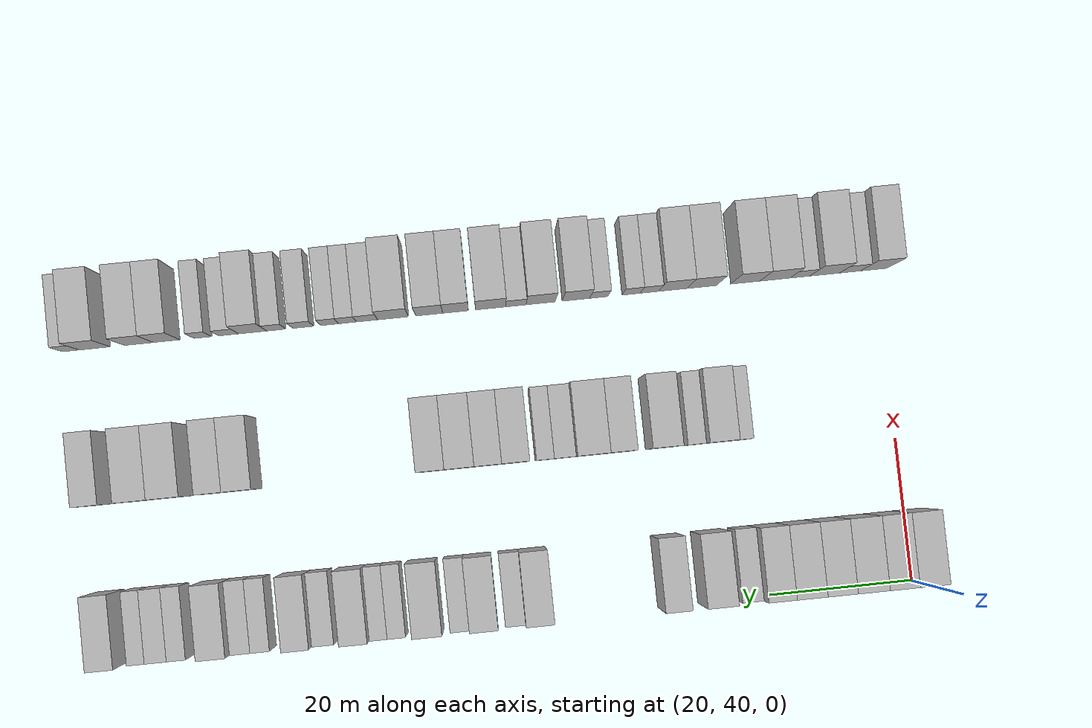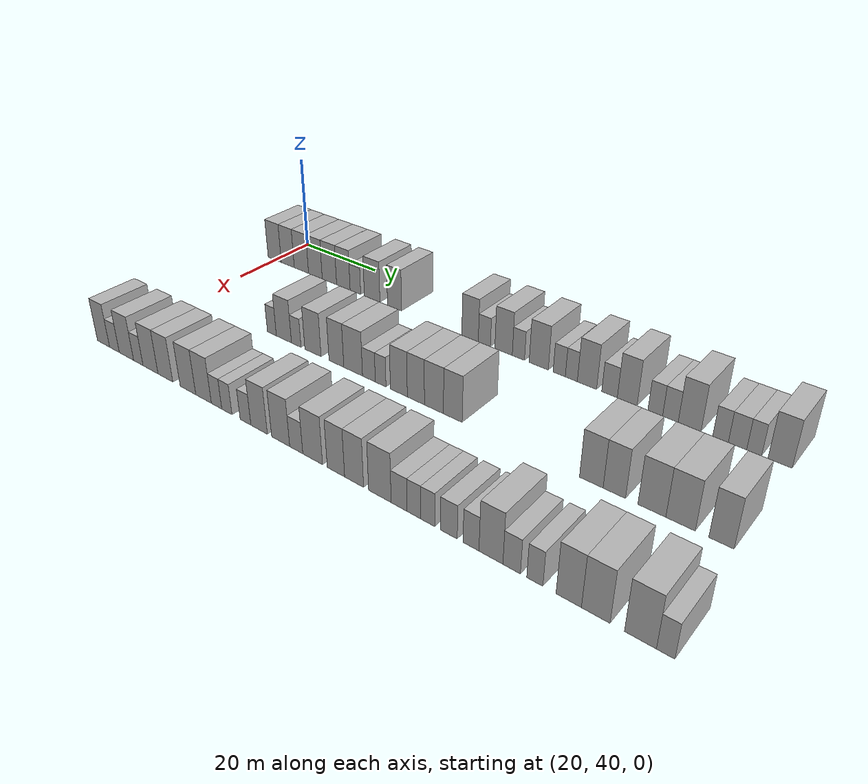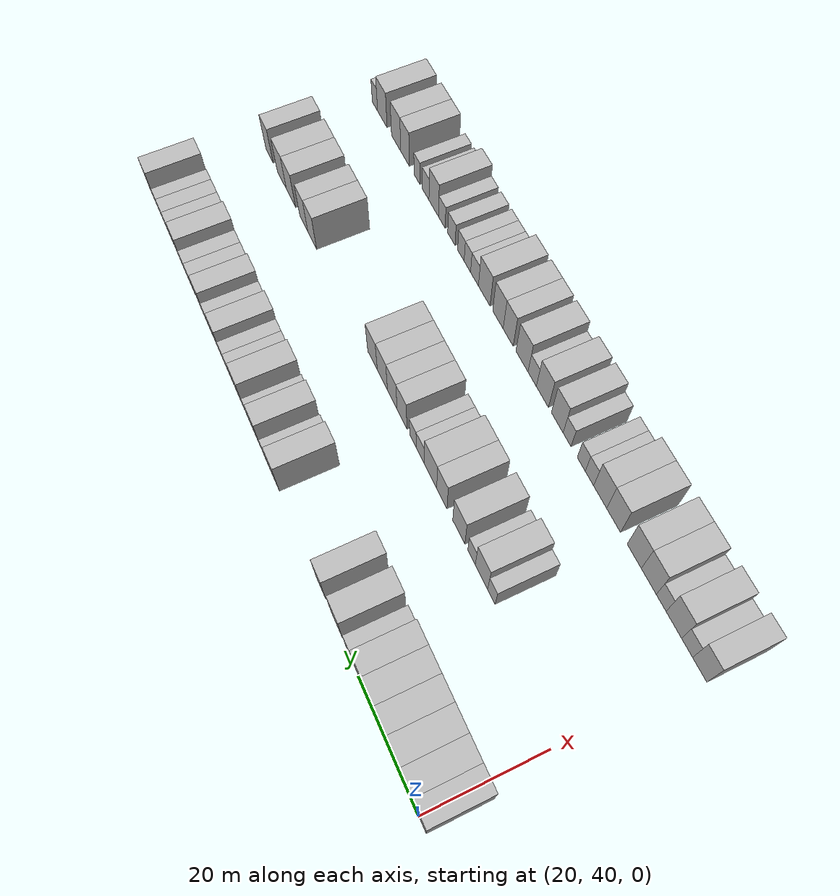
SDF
<sdf version="1.6">
 <world name="default">
  <model name="building_73">
   <static>1</static>
   <pose>25.0000 39.7007 0 0.000000 0.000000 0.000000</pose>
   <link name="link">
    <pose>0 0 4.50 0 0 0</pose>
    <collision name="collision"><geometry><box><size>10.0000 4.1010 9.0000</size></box></geometry></collision>
    <visual name="visual">
     <cast_shadows>0</cast_shadows>
     <geometry><box><size>10.0000 4.1010 9.0000</size></box></geometry>
     <material>
      <script>
       <uri>model://HANNAS_wall/materials/scripts</uri>
       <uri>model://HANNAS_wall/materials/textures</uri>
       <name>vrc/HANNAS_wall</name>
      </script>
     </material>
    </visual>
   </link>
  </model>
  <model name="building_74">
   <static>1</static>
   <pose>25.0000 43.7528 0 0.000000 0.000000 0.000000</pose>
   <link name="link">
    <pose>0 0 4.50 0 0 0</pose>
    <collision name="collision"><geometry><box><size>10.0000 4.0031 9.0000</size></box></geometry></collision>
    <visual name="visual">
     <cast_shadows>0</cast_shadows>
     <geometry><box><size>10.0000 4.0031 9.0000</size></box></geometry>
     <material>
      <script>
       <uri>model://HANNAS_wall/materials/scripts</uri>
       <uri>model://HANNAS_wall/materials/textures</uri>
       <name>vrc/HANNAS_wall</name>
      </script>
     </material>
    </visual>
   </link>
  </model>
  <model name="building_75">
   <static>1</static>
   <pose>25.0000 47.8939 0 0.000000 0.000000 0.000000</pose>
   <link name="link">
    <pose>0 0 4.50 0 0 0</pose>
    <collision name="collision"><geometry><box><size>10.0000 4.2792 9.0000</size></box></geometry></collision>
    <visual name="visual">
     <cast_shadows>0</cast_shadows>
     <geometry><box><size>10.0000 4.2792 9.0000</size></box></geometry>
     <material>
      <script>
       <uri>model://HANNAS_wall/materials/scripts</uri>
       <uri>model://HANNAS_wall/materials/textures</uri>
       <name>vrc/HANNAS_wall</name>
      </script>
     </material>
    </visual>
   </link>
  </model>
  <model name="building_76">
   <static>1</static>
   <pose>25.0000 52.0568 0 0.000000 0.000000 0.000000</pose>
   <link name="link">
    <pose>0 0 4.50 0 0 0</pose>
    <collision name="collision"><geometry><box><size>10.0000 4.0465 9.0000</size></box></geometry></collision>
    <visual name="visual">
     <cast_shadows>0</cast_shadows>
     <geometry><box><size>10.0000 4.0465 9.0000</size></box></geometry>
     <material>
      <script>
       <uri>model://HANNAS_wall/materials/scripts</uri>
       <uri>model://HANNAS_wall/materials/textures</uri>
       <name>vrc/HANNAS_wall</name>
      </script>
     </material>
    </visual>
   </link>
  </model>
  <model name="building_77">
   <static>1</static>
   <pose>25.0000 56.1449 0 0.000000 0.000000 0.000000</pose>
   <link name="link">
    <pose>0 0 4.50 0 0 0</pose>
    <collision name="collision"><geometry><box><size>10.0000 4.1297 9.0000</size></box></geometry></collision>
    <visual name="visual">
     <cast_shadows>0</cast_shadows>
     <geometry><box><size>10.0000 4.1297 9.0000</size></box></geometry>
     <material>
      <script>
       <uri>model://HANNAS_wall/materials/scripts</uri>
       <uri>model://HANNAS_wall/materials/textures</uri>
       <name>vrc/HANNAS_wall</name>
      </script>
     </material>
    </visual>
   </link>
  </model>
  <model name="building_78">
   <static>1</static>
   <pose>25.0000 60.1134 0 0.000000 0.000000 0.000000</pose>
   <link name="link">
    <pose>0 0 4.50 0 0 0</pose>
    <collision name="collision"><geometry><box><size>10.0000 3.8072 9.0000</size></box></geometry></collision>
    <visual name="visual">
     <cast_shadows>0</cast_shadows>
     <geometry><box><size>10.0000 3.8072 9.0000</size></box></geometry>
     <material>
      <script>
       <uri>model://HANNAS_wall/materials/scripts</uri>
       <uri>model://HANNAS_wall/materials/textures</uri>
       <name>vrc/HANNAS_wall</name>
      </script>
     </material>
    </visual>
   </link>
  </model>
  <model name="building_79">
   <static>1</static>
   <pose>25.0000 63.4777 0 0.000000 0.000000 0.000000</pose>
   <link name="link">
    <pose>0 0 3.00 0 0 0</pose>
    <collision name="collision"><geometry><box><size>10.0000 2.9216 6.0000</size></box></geometry></collision>
    <visual name="visual">
     <cast_shadows>0</cast_shadows>
     <geometry><box><size>10.0000 2.9216 6.0000</size></box></geometry>
     <material>
      <script>
       <uri>model://HANNAS_wall/materials/scripts</uri>
       <uri>model://HANNAS_wall/materials/textures</uri>
       <name>vrc/HANNAS_wall</name>
      </script>
     </material>
    </visual>
   </link>
  </model>
  <model name="building_80">
   <static>1</static>
   <pose>25.0000 68.0339 0 0.000000 0.000000 0.000000</pose>
   <link name="link">
    <pose>0 0 4.50 0 0 0</pose>
    <collision name="collision"><geometry><box><size>10.0000 4.1908 9.0000</size></box></geometry></collision>
    <visual name="visual">
     <cast_shadows>0</cast_shadows>
     <geometry><box><size>10.0000 4.1908 9.0000</size></box></geometry>
     <material>
      <script>
       <uri>model://HANNAS_wall/materials/scripts</uri>
       <uri>model://HANNAS_wall/materials/textures</uri>
       <name>vrc/HANNAS_wall</name>
      </script>
     </material>
    </visual>
   </link>
  </model>
  <model name="building_81">
   <static>1</static>
   <pose>25.0000 73.9498 0 0.000000 0.000000 0.000000</pose>
   <link name="link">
    <pose>0 0 4.50 0 0 0</pose>
    <collision name="collision"><geometry><box><size>10.0000 3.6410 9.0000</size></box></geometry></collision>
    <visual name="visual">
     <cast_shadows>0</cast_shadows>
     <geometry><box><size>10.0000 3.6410 9.0000</size></box></geometry>
     <material>
      <script>
       <uri>model://HANNAS_wall/materials/scripts</uri>
       <uri>model://HANNAS_wall/materials/textures</uri>
       <name>vrc/HANNAS_wall</name>
      </script>
     </material>
    </visual>
   </link>
  </model>
  <model name="building_82">
   <static>1</static>
   <pose>25.0000 92.5254 0 0.000000 0.000000 0.000000</pose>
   <link name="link">
    <pose>0 0 4.50 0 0 0</pose>
    <collision name="collision"><geometry><box><size>10.0000 3.8368 9.0000</size></box></geometry></collision>
    <visual name="visual">
     <cast_shadows>0</cast_shadows>
     <geometry><box><size>10.0000 3.8368 9.0000</size></box></geometry>
     <material>
      <script>
       <uri>model://HANNAS_wall/materials/scripts</uri>
       <uri>model://HANNAS_wall/materials/textures</uri>
       <name>vrc/HANNAS_wall</name>
      </script>
     </material>
    </visual>
   </link>
  </model>
  <model name="building_83">
   <static>1</static>
   <pose>25.0000 95.8199 0 0.000000 0.000000 0.000000</pose>
   <link name="link">
    <pose>0 0 3.00 0 0 0</pose>
    <collision name="collision"><geometry><box><size>10.0000 2.7521 6.0000</size></box></geometry></collision>
    <visual name="visual">
     <cast_shadows>0</cast_shadows>
     <geometry><box><size>10.0000 2.7521 6.0000</size></box></geometry>
     <material>
      <script>
       <uri>model://HANNAS_wall/materials/scripts</uri>
       <uri>model://HANNAS_wall/materials/textures</uri>
       <name>vrc/HANNAS_wall</name>
      </script>
     </material>
    </visual>
   </link>
  </model>
  <model name="building_84">
   <static>1</static>
   <pose>25.0000 100.1301 0 0.000000 0.000000 0.000000</pose>
   <link name="link">
    <pose>0 0 4.50 0 0 0</pose>
    <collision name="collision"><geometry><box><size>10.0000 3.8682 9.0000</size></box></geometry></collision>
    <visual name="visual">
     <cast_shadows>0</cast_shadows>
     <geometry><box><size>10.0000 3.8682 9.0000</size></box></geometry>
     <material>
      <script>
       <uri>model://HANNAS_wall/materials/scripts</uri>
       <uri>model://HANNAS_wall/materials/textures</uri>
       <name>vrc/HANNAS_wall</name>
      </script>
     </material>
    </visual>
   </link>
  </model>
  <model name="building_85">
   <static>1</static>
   <pose>25.0000 103.3942 0 0.000000 0.000000 0.000000</pose>
   <link name="link">
    <pose>0 0 3.00 0 0 0</pose>
    <collision name="collision"><geometry><box><size>10.0000 2.6601 6.0000</size></box></geometry></collision>
    <visual name="visual">
     <cast_shadows>0</cast_shadows>
     <geometry><box><size>10.0000 2.6601 6.0000</size></box></geometry>
     <material>
      <script>
       <uri>model://HANNAS_wall/materials/scripts</uri>
       <uri>model://HANNAS_wall/materials/textures</uri>
       <name>vrc/HANNAS_wall</name>
      </script>
     </material>
    </visual>
   </link>
  </model>
  <model name="building_86">
   <static>1</static>
   <pose>25.0000 107.7466 0 0.000000 0.000000 0.000000</pose>
   <link name="link">
    <pose>0 0 4.50 0 0 0</pose>
    <collision name="collision"><geometry><box><size>10.0000 4.0449 9.0000</size></box></geometry></collision>
    <visual name="visual">
     <cast_shadows>0</cast_shadows>
     <geometry><box><size>10.0000 4.0449 9.0000</size></box></geometry>
     <material>
      <script>
       <uri>model://HANNAS_wall/materials/scripts</uri>
       <uri>model://HANNAS_wall/materials/textures</uri>
       <name>vrc/HANNAS_wall</name>
      </script>
     </material>
    </visual>
   </link>
  </model>
  <model name="building_87">
   <static>1</static>
   <pose>25.0000 112.0256 0 0.000000 0.000000 0.000000</pose>
   <link name="link">
    <pose>0 0 3.00 0 0 0</pose>
    <collision name="collision"><geometry><box><size>10.0000 2.5132 6.0000</size></box></geometry></collision>
    <visual name="visual">
     <cast_shadows>0</cast_shadows>
     <geometry><box><size>10.0000 2.5132 6.0000</size></box></geometry>
     <material>
      <script>
       <uri>model://HANNAS_wall/materials/scripts</uri>
       <uri>model://HANNAS_wall/materials/textures</uri>
       <name>vrc/HANNAS_wall</name>
      </script>
     </material>
    </visual>
   </link>
  </model>
  <model name="building_88">
   <static>1</static>
   <pose>25.0000 114.4950 0 0.000000 0.000000 0.000000</pose>
   <link name="link">
    <pose>0 0 3.00 0 0 0</pose>
    <collision name="collision"><geometry><box><size>10.0000 2.4255 6.0000</size></box></geometry></collision>
    <visual name="visual">
     <cast_shadows>0</cast_shadows>
     <geometry><box><size>10.0000 2.4255 6.0000</size></box></geometry>
     <material>
      <script>
       <uri>model://HANNAS_wall/materials/scripts</uri>
       <uri>model://HANNAS_wall/materials/textures</uri>
       <name>vrc/HANNAS_wall</name>
      </script>
     </material>
    </visual>
   </link>
  </model>
  <model name="building_89">
   <static>1</static>
   <pose>25.0000 117.6161 0 0.000000 0.000000 0.000000</pose>
   <link name="link">
    <pose>0 0 4.50 0 0 0</pose>
    <collision name="collision"><geometry><box><size>10.0000 3.8167 9.0000</size></box></geometry></collision>
    <visual name="visual">
     <cast_shadows>0</cast_shadows>
     <geometry><box><size>10.0000 3.8167 9.0000</size></box></geometry>
     <material>
      <script>
       <uri>model://HANNAS_wall/materials/scripts</uri>
       <uri>model://HANNAS_wall/materials/textures</uri>
       <name>vrc/HANNAS_wall</name>
      </script>
     </material>
    </visual>
   </link>
  </model>
  <model name="building_90">
   <static>1</static>
   <pose>25.0000 122.0232 0 0.000000 0.000000 0.000000</pose>
   <link name="link">
    <pose>0 0 3.00 0 0 0</pose>
    <collision name="collision"><geometry><box><size>10.0000 2.9976 6.0000</size></box></geometry></collision>
    <visual name="visual">
     <cast_shadows>0</cast_shadows>
     <geometry><box><size>10.0000 2.9976 6.0000</size></box></geometry>
     <material>
      <script>
       <uri>model://HANNAS_wall/materials/scripts</uri>
       <uri>model://HANNAS_wall/materials/textures</uri>
       <name>vrc/HANNAS_wall</name>
      </script>
     </material>
    </visual>
   </link>
  </model>
  <model name="building_91">
   <static>1</static>
   <pose>25.0000 125.3807 0 0.000000 0.000000 0.000000</pose>
   <link name="link">
    <pose>0 0 4.50 0 0 0</pose>
    <collision name="collision"><geometry><box><size>10.0000 3.7174 9.0000</size></box></geometry></collision>
    <visual name="visual">
     <cast_shadows>0</cast_shadows>
     <geometry><box><size>10.0000 3.7174 9.0000</size></box></geometry>
     <material>
      <script>
       <uri>model://HANNAS_wall/materials/scripts</uri>
       <uri>model://HANNAS_wall/materials/textures</uri>
       <name>vrc/HANNAS_wall</name>
      </script>
     </material>
    </visual>
   </link>
  </model>
  <model name="building_92">
   <static>1</static>
   <pose>25.0000 130.5707 0 0.000000 0.000000 0.000000</pose>
   <link name="link">
    <pose>0 0 3.00 0 0 0</pose>
    <collision name="collision"><geometry><box><size>10.0000 2.6626 6.0000</size></box></geometry></collision>
    <visual name="visual">
     <cast_shadows>0</cast_shadows>
     <geometry><box><size>10.0000 2.6626 6.0000</size></box></geometry>
     <material>
      <script>
       <uri>model://HANNAS_wall/materials/scripts</uri>
       <uri>model://HANNAS_wall/materials/textures</uri>
       <name>vrc/HANNAS_wall</name>
      </script>
     </material>
    </visual>
   </link>
  </model>
  <model name="building_93">
   <static>1</static>
   <pose>25.0000 133.2883 0 0.000000 0.000000 0.000000</pose>
   <link name="link">
    <pose>0 0 3.00 0 0 0</pose>
    <collision name="collision"><geometry><box><size>10.0000 2.7726 6.0000</size></box></geometry></collision>
    <visual name="visual">
     <cast_shadows>0</cast_shadows>
     <geometry><box><size>10.0000 2.7726 6.0000</size></box></geometry>
     <material>
      <script>
       <uri>model://HANNAS_wall/materials/scripts</uri>
       <uri>model://HANNAS_wall/materials/textures</uri>
       <name>vrc/HANNAS_wall</name>
      </script>
     </material>
    </visual>
   </link>
  </model>
  <model name="building_94">
   <static>1</static>
   <pose>25.0000 136.6566 0 0.000000 0.000000 0.000000</pose>
   <link name="link">
    <pose>0 0 4.50 0 0 0</pose>
    <collision name="collision"><geometry><box><size>10.0000 3.9639 9.0000</size></box></geometry></collision>
    <visual name="visual">
     <cast_shadows>0</cast_shadows>
     <geometry><box><size>10.0000 3.9639 9.0000</size></box></geometry>
     <material>
      <script>
       <uri>model://HANNAS_wall/materials/scripts</uri>
       <uri>model://HANNAS_wall/materials/textures</uri>
       <name>vrc/HANNAS_wall</name>
      </script>
     </material>
    </visual>
   </link>
  </model>
  <model name="building_95">
   <static>1</static>
   <pose>25.0000 141.9378 0 0.000000 0.000000 0.000000</pose>
   <link name="link">
    <pose>0 0 3.00 0 0 0</pose>
    <collision name="collision"><geometry><box><size>10.0000 2.5986 6.0000</size></box></geometry></collision>
    <visual name="visual">
     <cast_shadows>0</cast_shadows>
     <geometry><box><size>10.0000 2.5986 6.0000</size></box></geometry>
     <material>
      <script>
       <uri>model://HANNAS_wall/materials/scripts</uri>
       <uri>model://HANNAS_wall/materials/textures</uri>
       <name>vrc/HANNAS_wall</name>
      </script>
     </material>
    </visual>
   </link>
  </model>
  <model name="building_96">
   <static>1</static>
   <pose>25.0000 144.7344 0 0.000000 0.000000 0.000000</pose>
   <link name="link">
    <pose>0 0 3.00 0 0 0</pose>
    <collision name="collision"><geometry><box><size>10.0000 2.9945 6.0000</size></box></geometry></collision>
    <visual name="visual">
     <cast_shadows>0</cast_shadows>
     <geometry><box><size>10.0000 2.9945 6.0000</size></box></geometry>
     <material>
      <script>
       <uri>model://HANNAS_wall/materials/scripts</uri>
       <uri>model://HANNAS_wall/materials/textures</uri>
       <name>vrc/HANNAS_wall</name>
      </script>
     </material>
    </visual>
   </link>
  </model>
  <model name="building_97">
   <static>1</static>
   <pose>25.0000 147.4343 0 0.000000 0.000000 0.000000</pose>
   <link name="link">
    <pose>0 0 3.00 0 0 0</pose>
    <collision name="collision"><geometry><box><size>10.0000 2.4054 6.0000</size></box></geometry></collision>
    <visual name="visual">
     <cast_shadows>0</cast_shadows>
     <geometry><box><size>10.0000 2.4054 6.0000</size></box></geometry>
     <material>
      <script>
       <uri>model://HANNAS_wall/materials/scripts</uri>
       <uri>model://HANNAS_wall/materials/textures</uri>
       <name>vrc/HANNAS_wall</name>
      </script>
     </material>
    </visual>
   </link>
  </model>
  <model name="building_98">
   <static>1</static>
   <pose>25.0000 151.5273 0 0.000000 0.000000 0.000000</pose>
   <link name="link">
    <pose>0 0 4.50 0 0 0</pose>
    <collision name="collision"><geometry><box><size>10.0000 3.7806 9.0000</size></box></geometry></collision>
    <visual name="visual">
     <cast_shadows>0</cast_shadows>
     <geometry><box><size>10.0000 3.7806 9.0000</size></box></geometry>
     <material>
      <script>
       <uri>model://HANNAS_wall/materials/scripts</uri>
       <uri>model://HANNAS_wall/materials/textures</uri>
       <name>vrc/HANNAS_wall</name>
      </script>
     </material>
    </visual>
   </link>
  </model>
  <model name="building_195">
   <static>1</static>
   <pose>47.0000 62.2405 0 0.000000 0.000000 0.000000</pose>
   <link name="link">
    <pose>0 0 3.00 0 0 0</pose>
    <collision name="collision"><geometry><box><size>10.0000 2.4345 6.0000</size></box></geometry></collision>
    <visual name="visual">
     <cast_shadows>0</cast_shadows>
     <geometry><box><size>10.0000 2.4345 6.0000</size></box></geometry>
     <material>
      <script>
       <uri>model://HANNAS_wall/materials/scripts</uri>
       <uri>model://HANNAS_wall/materials/textures</uri>
       <name>vrc/HANNAS_wall</name>
      </script>
     </material>
    </visual>
   </link>
  </model>
  <model name="building_196">
   <static>1</static>
   <pose>47.0000 65.4809 0 0.000000 0.000000 0.000000</pose>
   <link name="link">
    <pose>0 0 4.50 0 0 0</pose>
    <collision name="collision"><geometry><box><size>10.0000 4.0462 9.0000</size></box></geometry></collision>
    <visual name="visual">
     <cast_shadows>0</cast_shadows>
     <geometry><box><size>10.0000 4.0462 9.0000</size></box></geometry>
     <material>
      <script>
       <uri>model://HANNAS_wall/materials/scripts</uri>
       <uri>model://HANNAS_wall/materials/textures</uri>
       <name>vrc/HANNAS_wall</name>
      </script>
     </material>
    </visual>
   </link>
  </model>
  <model name="building_197">
   <static>1</static>
   <pose>47.0000 68.7601 0 0.000000 0.000000 0.000000</pose>
   <link name="link">
    <pose>0 0 3.00 0 0 0</pose>
    <collision name="collision"><geometry><box><size>10.0000 2.5123 6.0000</size></box></geometry></collision>
    <visual name="visual">
     <cast_shadows>0</cast_shadows>
     <geometry><box><size>10.0000 2.5123 6.0000</size></box></geometry>
     <material>
      <script>
       <uri>model://HANNAS_wall/materials/scripts</uri>
       <uri>model://HANNAS_wall/materials/textures</uri>
       <name>vrc/HANNAS_wall</name>
      </script>
     </material>
    </visual>
   </link>
  </model>
  <model name="building_198">
   <static>1</static>
   <pose>47.0000 73.0883 0 0.000000 0.000000 0.000000</pose>
   <link name="link">
    <pose>0 0 4.50 0 0 0</pose>
    <collision name="collision"><geometry><box><size>10.0000 4.1441 9.0000</size></box></geometry></collision>
    <visual name="visual">
     <cast_shadows>0</cast_shadows>
     <geometry><box><size>10.0000 4.1441 9.0000</size></box></geometry>
     <material>
      <script>
       <uri>model://HANNAS_wall/materials/scripts</uri>
       <uri>model://HANNAS_wall/materials/textures</uri>
       <name>vrc/HANNAS_wall</name>
      </script>
     </material>
    </visual>
   </link>
  </model>
  <model name="building_199">
   <static>1</static>
   <pose>47.0000 78.9783 0 0.000000 0.000000 0.000000</pose>
   <link name="link">
    <pose>0 0 4.50 0 0 0</pose>
    <collision name="collision"><geometry><box><size>10.0000 3.6359 9.0000</size></box></geometry></collision>
    <visual name="visual">
     <cast_shadows>0</cast_shadows>
     <geometry><box><size>10.0000 3.6359 9.0000</size></box></geometry>
     <material>
      <script>
       <uri>model://HANNAS_wall/materials/scripts</uri>
       <uri>model://HANNAS_wall/materials/textures</uri>
       <name>vrc/HANNAS_wall</name>
      </script>
     </material>
    </visual>
   </link>
  </model>
  <model name="building_200">
   <static>1</static>
   <pose>47.0000 83.0356 0 0.000000 0.000000 0.000000</pose>
   <link name="link">
    <pose>0 0 4.50 0 0 0</pose>
    <collision name="collision"><geometry><box><size>10.0000 4.4788 9.0000</size></box></geometry></collision>
    <visual name="visual">
     <cast_shadows>0</cast_shadows>
     <geometry><box><size>10.0000 4.4788 9.0000</size></box></geometry>
     <material>
      <script>
       <uri>model://HANNAS_wall/materials/scripts</uri>
       <uri>model://HANNAS_wall/materials/textures</uri>
       <name>vrc/HANNAS_wall</name>
      </script>
     </material>
    </visual>
   </link>
  </model>
  <model name="building_201">
   <static>1</static>
   <pose>47.0000 86.7734 0 0.000000 0.000000 0.000000</pose>
   <link name="link">
    <pose>0 0 3.00 0 0 0</pose>
    <collision name="collision"><geometry><box><size>10.0000 2.9968 6.0000</size></box></geometry></collision>
    <visual name="visual">
     <cast_shadows>0</cast_shadows>
     <geometry><box><size>10.0000 2.9968 6.0000</size></box></geometry>
     <material>
      <script>
       <uri>model://HANNAS_wall/materials/scripts</uri>
       <uri>model://HANNAS_wall/materials/textures</uri>
       <name>vrc/HANNAS_wall</name>
      </script>
     </material>
    </visual>
   </link>
  </model>
  <model name="building_202">
   <static>1</static>
   <pose>47.0000 89.4960 0 0.000000 0.000000 0.000000</pose>
   <link name="link">
    <pose>0 0 3.00 0 0 0</pose>
    <collision name="collision"><geometry><box><size>10.0000 2.4482 6.0000</size></box></geometry></collision>
    <visual name="visual">
     <cast_shadows>0</cast_shadows>
     <geometry><box><size>10.0000 2.4482 6.0000</size></box></geometry>
     <material>
      <script>
       <uri>model://HANNAS_wall/materials/scripts</uri>
       <uri>model://HANNAS_wall/materials/textures</uri>
       <name>vrc/HANNAS_wall</name>
      </script>
     </material>
    </visual>
   </link>
  </model>
  <model name="building_203">
   <static>1</static>
   <pose>47.0000 93.6079 0 0.000000 0.000000 0.000000</pose>
   <link name="link">
    <pose>0 0 4.50 0 0 0</pose>
    <collision name="collision"><geometry><box><size>10.0000 3.7756 9.0000</size></box></geometry></collision>
    <visual name="visual">
     <cast_shadows>0</cast_shadows>
     <geometry><box><size>10.0000 3.7756 9.0000</size></box></geometry>
     <material>
      <script>
       <uri>model://HANNAS_wall/materials/scripts</uri>
       <uri>model://HANNAS_wall/materials/textures</uri>
       <name>vrc/HANNAS_wall</name>
      </script>
     </material>
    </visual>
   </link>
  </model>
  <model name="building_204">
   <static>1</static>
   <pose>47.0000 97.3581 0 0.000000 0.000000 0.000000</pose>
   <link name="link">
    <pose>0 0 4.50 0 0 0</pose>
    <collision name="collision"><geometry><box><size>10.0000 3.7249 9.0000</size></box></geometry></collision>
    <visual name="visual">
     <cast_shadows>0</cast_shadows>
     <geometry><box><size>10.0000 3.7249 9.0000</size></box></geometry>
     <material>
      <script>
       <uri>model://HANNAS_wall/materials/scripts</uri>
       <uri>model://HANNAS_wall/materials/textures</uri>
       <name>vrc/HANNAS_wall</name>
      </script>
     </material>
    </visual>
   </link>
  </model>
  <model name="building_205">
   <static>1</static>
   <pose>47.0000 101.2338 0 0.000000 0.000000 0.000000</pose>
   <link name="link">
    <pose>0 0 4.50 0 0 0</pose>
    <collision name="collision"><geometry><box><size>10.0000 4.0266 9.0000</size></box></geometry></collision>
    <visual name="visual">
     <cast_shadows>0</cast_shadows>
     <geometry><box><size>10.0000 4.0266 9.0000</size></box></geometry>
     <material>
      <script>
       <uri>model://HANNAS_wall/materials/scripts</uri>
       <uri>model://HANNAS_wall/materials/textures</uri>
       <name>vrc/HANNAS_wall</name>
      </script>
     </material>
    </visual>
   </link>
  </model>
  <model name="building_206">
   <static>1</static>
   <pose>47.0000 105.1846 0 0.000000 0.000000 0.000000</pose>
   <link name="link">
    <pose>0 0 4.50 0 0 0</pose>
    <collision name="collision"><geometry><box><size>10.0000 3.8750 9.0000</size></box></geometry></collision>
    <visual name="visual">
     <cast_shadows>0</cast_shadows>
     <geometry><box><size>10.0000 3.8750 9.0000</size></box></geometry>
     <material>
      <script>
       <uri>model://HANNAS_wall/materials/scripts</uri>
       <uri>model://HANNAS_wall/materials/textures</uri>
       <name>vrc/HANNAS_wall</name>
      </script>
     </material>
    </visual>
   </link>
  </model>
  <model name="building_207">
   <static>1</static>
   <pose>47.0000 131.1516 0 0.000000 0.000000 0.000000</pose>
   <link name="link">
    <pose>0 0 4.50 0 0 0</pose>
    <collision name="collision"><geometry><box><size>10.0000 4.0197 9.0000</size></box></geometry></collision>
    <visual name="visual">
     <cast_shadows>0</cast_shadows>
     <geometry><box><size>10.0000 4.0197 9.0000</size></box></geometry>
     <material>
      <script>
       <uri>model://HANNAS_wall/materials/scripts</uri>
       <uri>model://HANNAS_wall/materials/textures</uri>
       <name>vrc/HANNAS_wall</name>
      </script>
     </material>
    </visual>
   </link>
  </model>
  <model name="building_208">
   <static>1</static>
   <pose>47.0000 135.0138 0 0.000000 0.000000 0.000000</pose>
   <link name="link">
    <pose>0 0 4.50 0 0 0</pose>
    <collision name="collision"><geometry><box><size>10.0000 3.7047 9.0000</size></box></geometry></collision>
    <visual name="visual">
     <cast_shadows>0</cast_shadows>
     <geometry><box><size>10.0000 3.7047 9.0000</size></box></geometry>
     <material>
      <script>
       <uri>model://HANNAS_wall/materials/scripts</uri>
       <uri>model://HANNAS_wall/materials/textures</uri>
       <name>vrc/HANNAS_wall</name>
      </script>
     </material>
    </visual>
   </link>
  </model>
  <model name="building_209">
   <static>1</static>
   <pose>47.0000 141.0677 0 0.000000 0.000000 0.000000</pose>
   <link name="link">
    <pose>0 0 4.50 0 0 0</pose>
    <collision name="collision"><geometry><box><size>10.0000 4.4031 9.0000</size></box></geometry></collision>
    <visual name="visual">
     <cast_shadows>0</cast_shadows>
     <geometry><box><size>10.0000 4.4031 9.0000</size></box></geometry>
     <material>
      <script>
       <uri>model://HANNAS_wall/materials/scripts</uri>
       <uri>model://HANNAS_wall/materials/textures</uri>
       <name>vrc/HANNAS_wall</name>
      </script>
     </material>
    </visual>
   </link>
  </model>
  <model name="building_210">
   <static>1</static>
   <pose>47.0000 145.5049 0 0.000000 0.000000 0.000000</pose>
   <link name="link">
    <pose>0 0 4.50 0 0 0</pose>
    <collision name="collision"><geometry><box><size>10.0000 4.4714 9.0000</size></box></geometry></collision>
    <visual name="visual">
     <cast_shadows>0</cast_shadows>
     <geometry><box><size>10.0000 4.4714 9.0000</size></box></geometry>
     <material>
      <script>
       <uri>model://HANNAS_wall/materials/scripts</uri>
       <uri>model://HANNAS_wall/materials/textures</uri>
       <name>vrc/HANNAS_wall</name>
      </script>
     </material>
    </visual>
   </link>
  </model>
  <model name="building_211">
   <static>1</static>
   <pose>47.0000 151.5703 0 0.000000 0.000000 0.000000</pose>
   <link name="link">
    <pose>0 0 4.50 0 0 0</pose>
    <collision name="collision"><geometry><box><size>10.0000 3.6595 9.0000</size></box></geometry></collision>
    <visual name="visual">
     <cast_shadows>0</cast_shadows>
     <geometry><box><size>10.0000 3.6595 9.0000</size></box></geometry>
     <material>
      <script>
       <uri>model://HANNAS_wall/materials/scripts</uri>
       <uri>model://HANNAS_wall/materials/textures</uri>
       <name>vrc/HANNAS_wall</name>
      </script>
     </material>
    </visual>
   </link>
  </model>
  <model name="building_309">
   <static>1</static>
   <pose>69.0000 40.4481 0 0.000000 0.000000 0.000000</pose>
   <link name="link">
    <pose>0 0 4.50 0 0 0</pose>
    <collision name="collision"><geometry><box><size>10.0000 3.7802 9.0000</size></box></geometry></collision>
    <visual name="visual">
     <cast_shadows>0</cast_shadows>
     <geometry><box><size>10.0000 3.7802 9.0000</size></box></geometry>
     <material>
      <script>
       <uri>model://HANNAS_wall/materials/scripts</uri>
       <uri>model://HANNAS_wall/materials/textures</uri>
       <name>vrc/HANNAS_wall</name>
      </script>
     </material>
    </visual>
   </link>
  </model>
  <model name="building_310">
   <static>1</static>
   <pose>69.0000 43.8290 0 0.000000 0.000000 0.000000</pose>
   <link name="link">
    <pose>0 0 3.00 0 0 0</pose>
    <collision name="collision"><geometry><box><size>10.0000 2.9817 6.0000</size></box></geometry></collision>
    <visual name="visual">
     <cast_shadows>0</cast_shadows>
     <geometry><box><size>10.0000 2.9817 6.0000</size></box></geometry>
     <material>
      <script>
       <uri>model://HANNAS_wall/materials/scripts</uri>
       <uri>model://HANNAS_wall/materials/textures</uri>
       <name>vrc/HANNAS_wall</name>
      </script>
     </material>
    </visual>
   </link>
  </model>
  <model name="building_311">
   <static>1</static>
   <pose>69.0000 47.4519 0 0.000000 0.000000 0.000000</pose>
   <link name="link">
    <pose>0 0 4.50 0 0 0</pose>
    <collision name="collision"><geometry><box><size>10.0000 4.2642 9.0000</size></box></geometry></collision>
    <visual name="visual">
     <cast_shadows>0</cast_shadows>
     <geometry><box><size>10.0000 4.2642 9.0000</size></box></geometry>
     <material>
      <script>
       <uri>model://HANNAS_wall/materials/scripts</uri>
       <uri>model://HANNAS_wall/materials/textures</uri>
       <name>vrc/HANNAS_wall</name>
      </script>
     </material>
    </visual>
   </link>
  </model>
  <model name="building_312">
   <static>1</static>
   <pose>69.0000 50.9602 0 0.000000 0.000000 0.000000</pose>
   <link name="link">
    <pose>0 0 3.00 0 0 0</pose>
    <collision name="collision"><geometry><box><size>10.0000 2.7523 6.0000</size></box></geometry></collision>
    <visual name="visual">
     <cast_shadows>0</cast_shadows>
     <geometry><box><size>10.0000 2.7523 6.0000</size></box></geometry>
     <material>
      <script>
       <uri>model://HANNAS_wall/materials/scripts</uri>
       <uri>model://HANNAS_wall/materials/textures</uri>
       <name>vrc/HANNAS_wall</name>
      </script>
     </material>
    </visual>
   </link>
  </model>
  <model name="building_313">
   <static>1</static>
   <pose>69.0000 54.4808 0 0.000000 0.000000 0.000000</pose>
   <link name="link">
    <pose>0 0 4.50 0 0 0</pose>
    <collision name="collision"><geometry><box><size>10.0000 4.2889 9.0000</size></box></geometry></collision>
    <visual name="visual">
     <cast_shadows>0</cast_shadows>
     <geometry><box><size>10.0000 4.2889 9.0000</size></box></geometry>
     <material>
      <script>
       <uri>model://HANNAS_wall/materials/scripts</uri>
       <uri>model://HANNAS_wall/materials/textures</uri>
       <name>vrc/HANNAS_wall</name>
      </script>
     </material>
    </visual>
   </link>
  </model>
  <model name="building_314">
   <static>1</static>
   <pose>69.0000 58.6859 0 0.000000 0.000000 0.000000</pose>
   <link name="link">
    <pose>0 0 4.50 0 0 0</pose>
    <collision name="collision"><geometry><box><size>10.0000 4.1212 9.0000</size></box></geometry></collision>
    <visual name="visual">
     <cast_shadows>0</cast_shadows>
     <geometry><box><size>10.0000 4.1212 9.0000</size></box></geometry>
     <material>
      <script>
       <uri>model://HANNAS_wall/materials/scripts</uri>
       <uri>model://HANNAS_wall/materials/textures</uri>
       <name>vrc/HANNAS_wall</name>
      </script>
     </material>
    </visual>
   </link>
  </model>
  <model name="building_315">
   <static>1</static>
   <pose>69.0000 64.8315 0 0.000000 0.000000 0.000000</pose>
   <link name="link">
    <pose>0 0 4.50 0 0 0</pose>
    <collision name="collision"><geometry><box><size>10.0000 4.1699 9.0000</size></box></geometry></collision>
    <visual name="visual">
     <cast_shadows>0</cast_shadows>
     <geometry><box><size>10.0000 4.1699 9.0000</size></box></geometry>
     <material>
      <script>
       <uri>model://HANNAS_wall/materials/scripts</uri>
       <uri>model://HANNAS_wall/materials/textures</uri>
       <name>vrc/HANNAS_wall</name>
      </script>
     </material>
    </visual>
   </link>
  </model>
  <model name="building_316">
   <static>1</static>
   <pose>69.0000 68.9459 0 0.000000 0.000000 0.000000</pose>
   <link name="link">
    <pose>0 0 4.50 0 0 0</pose>
    <collision name="collision"><geometry><box><size>10.0000 4.0590 9.0000</size></box></geometry></collision>
    <visual name="visual">
     <cast_shadows>0</cast_shadows>
     <geometry><box><size>10.0000 4.0590 9.0000</size></box></geometry>
     <material>
      <script>
       <uri>model://HANNAS_wall/materials/scripts</uri>
       <uri>model://HANNAS_wall/materials/textures</uri>
       <name>vrc/HANNAS_wall</name>
      </script>
     </material>
    </visual>
   </link>
  </model>
  <model name="building_317">
   <static>1</static>
   <pose>69.0000 72.2925 0 0.000000 0.000000 0.000000</pose>
   <link name="link">
    <pose>0 0 3.00 0 0 0</pose>
    <collision name="collision"><geometry><box><size>10.0000 2.6341 6.0000</size></box></geometry></collision>
    <visual name="visual">
     <cast_shadows>0</cast_shadows>
     <geometry><box><size>10.0000 2.6341 6.0000</size></box></geometry>
     <material>
      <script>
       <uri>model://HANNAS_wall/materials/scripts</uri>
       <uri>model://HANNAS_wall/materials/textures</uri>
       <name>vrc/HANNAS_wall</name>
      </script>
     </material>
    </visual>
   </link>
  </model>
  <model name="building_318">
   <static>1</static>
   <pose>69.0000 74.8836 0 0.000000 0.000000 0.000000</pose>
   <link name="link">
    <pose>0 0 3.00 0 0 0</pose>
    <collision name="collision"><geometry><box><size>10.0000 2.5480 6.0000</size></box></geometry></collision>
    <visual name="visual">
     <cast_shadows>0</cast_shadows>
     <geometry><box><size>10.0000 2.5480 6.0000</size></box></geometry>
     <material>
      <script>
       <uri>model://HANNAS_wall/materials/scripts</uri>
       <uri>model://HANNAS_wall/materials/textures</uri>
       <name>vrc/HANNAS_wall</name>
      </script>
     </material>
    </visual>
   </link>
  </model>
  <model name="building_319">
   <static>1</static>
   <pose>69.0000 79.4538 0 0.000000 0.000000 0.000000</pose>
   <link name="link">
    <pose>0 0 3.00 0 0 0</pose>
    <collision name="collision"><geometry><box><size>10.0000 2.5924 6.0000</size></box></geometry></collision>
    <visual name="visual">
     <cast_shadows>0</cast_shadows>
     <geometry><box><size>10.0000 2.5924 6.0000</size></box></geometry>
     <material>
      <script>
       <uri>model://HANNAS_wall/materials/scripts</uri>
       <uri>model://HANNAS_wall/materials/textures</uri>
       <name>vrc/HANNAS_wall</name>
      </script>
     </material>
    </visual>
   </link>
  </model>
  <model name="building_320">
   <static>1</static>
   <pose>69.0000 82.6919 0 0.000000 0.000000 0.000000</pose>
   <link name="link">
    <pose>0 0 4.50 0 0 0</pose>
    <collision name="collision"><geometry><box><size>10.0000 3.8837 9.0000</size></box></geometry></collision>
    <visual name="visual">
     <cast_shadows>0</cast_shadows>
     <geometry><box><size>10.0000 3.8837 9.0000</size></box></geometry>
     <material>
      <script>
       <uri>model://HANNAS_wall/materials/scripts</uri>
       <uri>model://HANNAS_wall/materials/textures</uri>
       <name>vrc/HANNAS_wall</name>
      </script>
     </material>
    </visual>
   </link>
  </model>
  <model name="building_321">
   <static>1</static>
   <pose>69.0000 87.6861 0 0.000000 0.000000 0.000000</pose>
   <link name="link">
    <pose>0 0 4.50 0 0 0</pose>
    <collision name="collision"><geometry><box><size>10.0000 4.1048 9.0000</size></box></geometry></collision>
    <visual name="visual">
     <cast_shadows>0</cast_shadows>
     <geometry><box><size>10.0000 4.1048 9.0000</size></box></geometry>
     <material>
      <script>
       <uri>model://HANNAS_wall/materials/scripts</uri>
       <uri>model://HANNAS_wall/materials/textures</uri>
       <name>vrc/HANNAS_wall</name>
      </script>
     </material>
    </visual>
   </link>
  </model>
  <model name="building_322">
   <static>1</static>
   <pose>69.0000 91.1842 0 0.000000 0.000000 0.000000</pose>
   <link name="link">
    <pose>0 0 3.00 0 0 0</pose>
    <collision name="collision"><geometry><box><size>10.0000 2.8913 6.0000</size></box></geometry></collision>
    <visual name="visual">
     <cast_shadows>0</cast_shadows>
     <geometry><box><size>10.0000 2.8913 6.0000</size></box></geometry>
     <material>
      <script>
       <uri>model://HANNAS_wall/materials/scripts</uri>
       <uri>model://HANNAS_wall/materials/textures</uri>
       <name>vrc/HANNAS_wall</name>
      </script>
     </material>
    </visual>
   </link>
  </model>
  <model name="building_323">
   <static>1</static>
   <pose>69.0000 94.7603 0 0.000000 0.000000 0.000000</pose>
   <link name="link">
    <pose>0 0 4.50 0 0 0</pose>
    <collision name="collision"><geometry><box><size>10.0000 4.2610 9.0000</size></box></geometry></collision>
    <visual name="visual">
     <cast_shadows>0</cast_shadows>
     <geometry><box><size>10.0000 4.2610 9.0000</size></box></geometry>
     <material>
      <script>
       <uri>model://HANNAS_wall/materials/scripts</uri>
       <uri>model://HANNAS_wall/materials/textures</uri>
       <name>vrc/HANNAS_wall</name>
      </script>
     </material>
    </visual>
   </link>
  </model>
  <model name="building_324">
   <static>1</static>
   <pose>69.0000 99.6965 0 0.000000 0.000000 0.000000</pose>
   <link name="link">
    <pose>0 0 4.50 0 0 0</pose>
    <collision name="collision"><geometry><box><size>10.0000 3.6114 9.0000</size></box></geometry></collision>
    <visual name="visual">
     <cast_shadows>0</cast_shadows>
     <geometry><box><size>10.0000 3.6114 9.0000</size></box></geometry>
     <material>
      <script>
       <uri>model://HANNAS_wall/materials/scripts</uri>
       <uri>model://HANNAS_wall/materials/textures</uri>
       <name>vrc/HANNAS_wall</name>
      </script>
     </material>
    </visual>
   </link>
  </model>
  <model name="building_325">
   <static>1</static>
   <pose>69.0000 103.4180 0 0.000000 0.000000 0.000000</pose>
   <link name="link">
    <pose>0 0 4.50 0 0 0</pose>
    <collision name="collision"><geometry><box><size>10.0000 3.8316 9.0000</size></box></geometry></collision>
    <visual name="visual">
     <cast_shadows>0</cast_shadows>
     <geometry><box><size>10.0000 3.8316 9.0000</size></box></geometry>
     <material>
      <script>
       <uri>model://HANNAS_wall/materials/scripts</uri>
       <uri>model://HANNAS_wall/materials/textures</uri>
       <name>vrc/HANNAS_wall</name>
      </script>
     </material>
    </visual>
   </link>
  </model>
  <model name="building_326">
   <static>1</static>
   <pose>69.0000 108.5151 0 0.000000 0.000000 0.000000</pose>
   <link name="link">
    <pose>0 0 4.50 0 0 0</pose>
    <collision name="collision"><geometry><box><size>10.0000 4.3626 9.0000</size></box></geometry></collision>
    <visual name="visual">
     <cast_shadows>0</cast_shadows>
     <geometry><box><size>10.0000 4.3626 9.0000</size></box></geometry>
     <material>
      <script>
       <uri>model://HANNAS_wall/materials/scripts</uri>
       <uri>model://HANNAS_wall/materials/textures</uri>
       <name>vrc/HANNAS_wall</name>
      </script>
     </material>
    </visual>
   </link>
  </model>
  <model name="building_327">
   <static>1</static>
   <pose>69.0000 112.1928 0 0.000000 0.000000 0.000000</pose>
   <link name="link">
    <pose>0 0 3.00 0 0 0</pose>
    <collision name="collision"><geometry><box><size>10.0000 2.9928 6.0000</size></box></geometry></collision>
    <visual name="visual">
     <cast_shadows>0</cast_shadows>
     <geometry><box><size>10.0000 2.9928 6.0000</size></box></geometry>
     <material>
      <script>
       <uri>model://HANNAS_wall/materials/scripts</uri>
       <uri>model://HANNAS_wall/materials/textures</uri>
       <name>vrc/HANNAS_wall</name>
      </script>
     </material>
    </visual>
   </link>
  </model>
  <model name="building_328">
   <static>1</static>
   <pose>69.0000 114.9421 0 0.000000 0.000000 0.000000</pose>
   <link name="link">
    <pose>0 0 3.00 0 0 0</pose>
    <collision name="collision"><geometry><box><size>10.0000 2.5058 6.0000</size></box></geometry></collision>
    <visual name="visual">
     <cast_shadows>0</cast_shadows>
     <geometry><box><size>10.0000 2.5058 6.0000</size></box></geometry>
     <material>
      <script>
       <uri>model://HANNAS_wall/materials/scripts</uri>
       <uri>model://HANNAS_wall/materials/textures</uri>
       <name>vrc/HANNAS_wall</name>
      </script>
     </material>
    </visual>
   </link>
  </model>
  <model name="building_329">
   <static>1</static>
   <pose>69.0000 117.4680 0 0.000000 0.000000 0.000000</pose>
   <link name="link">
    <pose>0 0 3.00 0 0 0</pose>
    <collision name="collision"><geometry><box><size>10.0000 2.5460 6.0000</size></box></geometry></collision>
    <visual name="visual">
     <cast_shadows>0</cast_shadows>
     <geometry><box><size>10.0000 2.5460 6.0000</size></box></geometry>
     <material>
      <script>
       <uri>model://HANNAS_wall/materials/scripts</uri>
       <uri>model://HANNAS_wall/materials/textures</uri>
       <name>vrc/HANNAS_wall</name>
      </script>
     </material>
    </visual>
   </link>
  </model>
  <model name="building_330">
   <static>1</static>
   <pose>69.0000 121.2208 0 0.000000 0.000000 0.000000</pose>
   <link name="link">
    <pose>0 0 3.00 0 0 0</pose>
    <collision name="collision"><geometry><box><size>10.0000 2.9595 6.0000</size></box></geometry></collision>
    <visual name="visual">
     <cast_shadows>0</cast_shadows>
     <geometry><box><size>10.0000 2.9595 6.0000</size></box></geometry>
     <material>
      <script>
       <uri>model://HANNAS_wall/materials/scripts</uri>
       <uri>model://HANNAS_wall/materials/textures</uri>
       <name>vrc/HANNAS_wall</name>
      </script>
     </material>
    </visual>
   </link>
  </model>
  <model name="building_331">
   <static>1</static>
   <pose>69.0000 125.0482 0 0.000000 0.000000 0.000000</pose>
   <link name="link">
    <pose>0 0 3.00 0 0 0</pose>
    <collision name="collision"><geometry><box><size>10.0000 2.6954 6.0000</size></box></geometry></collision>
    <visual name="visual">
     <cast_shadows>0</cast_shadows>
     <geometry><box><size>10.0000 2.6954 6.0000</size></box></geometry>
     <material>
      <script>
       <uri>model://HANNAS_wall/materials/scripts</uri>
       <uri>model://HANNAS_wall/materials/textures</uri>
       <name>vrc/HANNAS_wall</name>
      </script>
     </material>
    </visual>
   </link>
  </model>
  <model name="building_332">
   <static>1</static>
   <pose>69.0000 128.3745 0 0.000000 0.000000 0.000000</pose>
   <link name="link">
    <pose>0 0 4.50 0 0 0</pose>
    <collision name="collision"><geometry><box><size>10.0000 3.9572 9.0000</size></box></geometry></collision>
    <visual name="visual">
     <cast_shadows>0</cast_shadows>
     <geometry><box><size>10.0000 3.9572 9.0000</size></box></geometry>
     <material>
      <script>
       <uri>model://HANNAS_wall/materials/scripts</uri>
       <uri>model://HANNAS_wall/materials/textures</uri>
       <name>vrc/HANNAS_wall</name>
      </script>
     </material>
    </visual>
   </link>
  </model>
  <model name="building_333">
   <static>1</static>
   <pose>69.0000 131.7531 0 0.000000 0.000000 0.000000</pose>
   <link name="link">
    <pose>0 0 3.00 0 0 0</pose>
    <collision name="collision"><geometry><box><size>10.0000 2.7999 6.0000</size></box></geometry></collision>
    <visual name="visual">
     <cast_shadows>0</cast_shadows>
     <geometry><box><size>10.0000 2.7999 6.0000</size></box></geometry>
     <material>
      <script>
       <uri>model://HANNAS_wall/materials/scripts</uri>
       <uri>model://HANNAS_wall/materials/textures</uri>
       <name>vrc/HANNAS_wall</name>
      </script>
     </material>
    </visual>
   </link>
  </model>
  <model name="building_334">
   <static>1</static>
   <pose>69.0000 135.4063 0 0.000000 0.000000 0.000000</pose>
   <link name="link">
    <pose>0 0 3.00 0 0 0</pose>
    <collision name="collision"><geometry><box><size>10.0000 2.5066 6.0000</size></box></geometry></collision>
    <visual name="visual">
     <cast_shadows>0</cast_shadows>
     <geometry><box><size>10.0000 2.5066 6.0000</size></box></geometry>
     <material>
      <script>
       <uri>model://HANNAS_wall/materials/scripts</uri>
       <uri>model://HANNAS_wall/materials/textures</uri>
       <name>vrc/HANNAS_wall</name>
      </script>
     </material>
    </visual>
   </link>
  </model>
  <model name="building_335">
   <static>1</static>
   <pose>69.0000 140.5377 0 0.000000 0.000000 0.000000</pose>
   <link name="link">
    <pose>0 0 4.50 0 0 0</pose>
    <collision name="collision"><geometry><box><size>10.0000 3.7561 9.0000</size></box></geometry></collision>
    <visual name="visual">
     <cast_shadows>0</cast_shadows>
     <geometry><box><size>10.0000 3.7561 9.0000</size></box></geometry>
     <material>
      <script>
       <uri>model://HANNAS_wall/materials/scripts</uri>
       <uri>model://HANNAS_wall/materials/textures</uri>
       <name>vrc/HANNAS_wall</name>
      </script>
     </material>
    </visual>
   </link>
  </model>
  <model name="building_336">
   <static>1</static>
   <pose>69.0000 144.4648 0 0.000000 0.000000 0.000000</pose>
   <link name="link">
    <pose>0 0 4.50 0 0 0</pose>
    <collision name="collision"><geometry><box><size>10.0000 4.0983 9.0000</size></box></geometry></collision>
    <visual name="visual">
     <cast_shadows>0</cast_shadows>
     <geometry><box><size>10.0000 4.0983 9.0000</size></box></geometry>
     <material>
      <script>
       <uri>model://HANNAS_wall/materials/scripts</uri>
       <uri>model://HANNAS_wall/materials/textures</uri>
       <name>vrc/HANNAS_wall</name>
      </script>
     </material>
    </visual>
   </link>
  </model>
  <model name="building_337">
   <static>1</static>
   <pose>69.0000 150.6708 0 0.000000 0.000000 0.000000</pose>
   <link name="link">
    <pose>0 0 4.50 0 0 0</pose>
    <collision name="collision"><geometry><box><size>10.0000 4.3136 9.0000</size></box></geometry></collision>
    <visual name="visual">
     <cast_shadows>0</cast_shadows>
     <geometry><box><size>10.0000 4.3136 9.0000</size></box></geometry>
     <material>
      <script>
       <uri>model://HANNAS_wall/materials/scripts</uri>
       <uri>model://HANNAS_wall/materials/textures</uri>
       <name>vrc/HANNAS_wall</name>
      </script>
     </material>
    </visual>
   </link>
  </model>
  <model name="building_338">
   <static>1</static>
   <pose>69.0000 154.0363 0 0.000000 0.000000 0.000000</pose>
   <link name="link">
    <pose>0 0 3.00 0 0 0</pose>
    <collision name="collision"><geometry><box><size>10.0000 2.4175 6.0000</size></box></geometry></collision>
    <visual name="visual">
     <cast_shadows>0</cast_shadows>
     <geometry><box><size>10.0000 2.4175 6.0000</size></box></geometry>
     <material>
      <script>
       <uri>model://HANNAS_wall/materials/scripts</uri>
       <uri>model://HANNAS_wall/materials/textures</uri>
       <name>vrc/HANNAS_wall</name>
      </script>
     </material>
    </visual>
   </link>
  </model>
 </world>
</sdf>
